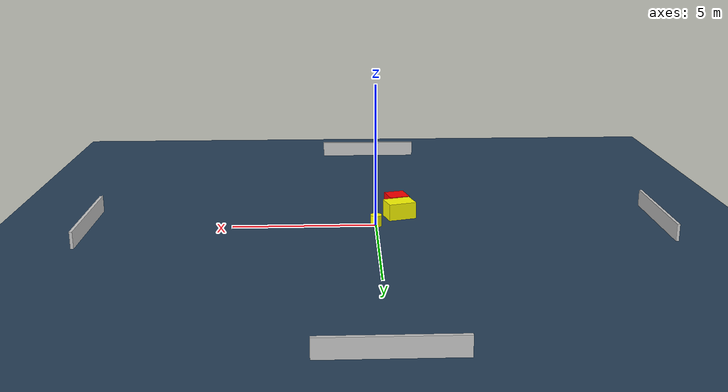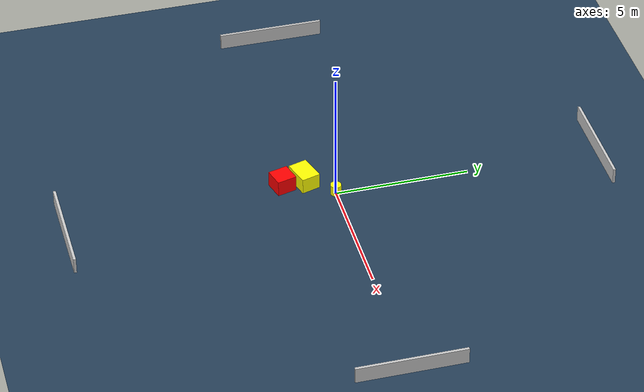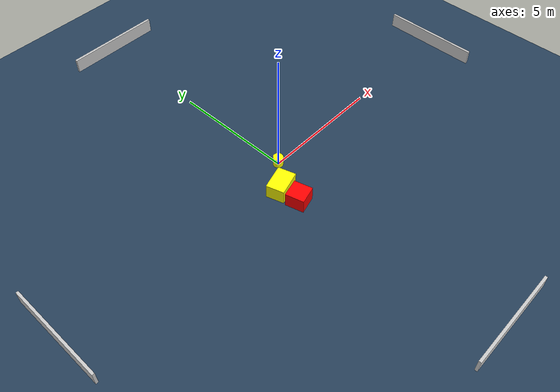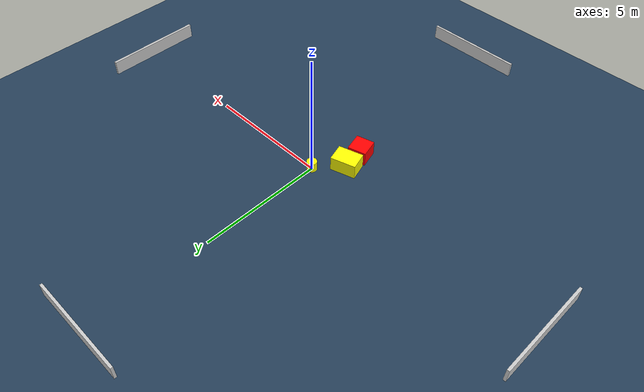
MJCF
<?xml version="1.0" ?>
<mujoco model="generated_environment">
  <option timestep="0.01" integrator="RK4" cone="elliptic"/>
  <default>
    <geom density="1"/>
  </default>
  <asset>
    <texture builtin="gradient" height="3072" name="skybox" rgb1="0.3 0.5 0.7" rgb2="0 0 0" type="skybox" width="512"/>
    <texture builtin="checker" height="300" name="groundplane" rgb1="0.2 0.3 0.4" rgb2="0.1 0.2 0.3" type="2d" width="300"/>
    <material name="groundplane" reflectance="0.2" texrepeat="5 5" texture="groundplane"/>
  </asset>
  <worldbody>
    <light dir="0 0 -1" directional="true" pos="0 0 1.5"/>
    <geom condim="3" friction="0.5 0.005 0.001" material="groundplane" name="floor" pos="0 0 0" size="0 0 0.05" type="plane"/>
    <body name="walls">
      <geom name="wall_1" condim="4" pos="-10.0 0.0 0.3" rgba="0.800000011920929 0.800000011920929 0.800000011920929 1.0" size="0.05 2.0 0.3" type="box"/>
      <geom name="wall_2" condim="4" pos="10.0 0.0 0.3" rgba="0.800000011920929 0.800000011920929 0.800000011920929 1.0" size="0.05 2.0 0.3" type="box"/>
      <geom name="wall_3" condim="4" pos="0.0 -10.0 0.3" rgba="0.800000011920929 0.800000011920929 0.800000011920929 1.0" size="2.0 0.05 0.3" type="box"/>
      <geom name="wall_4" condim="4" pos="0.0 10.0 0.3" rgba="0.800000011920929 0.800000011920929 0.800000011920929 1.0" size="2.0 0.05 0.3" type="box"/>
    </body>
    <body name="robot">
      <joint name="joint_x" type="slide" pos="0 0 0" axis="1 0 0"/>
      <joint name="joint_y" type="slide" pos="0 0 0" axis="0 1 0"/>
      <geom name="robot" type="cylinder" pos="0.0 0.0 0.2" size="0.2 0.2 0.0" mass="5.0" friction="1.0 0.005 0.0001" condim="4" rgba="1.0 1.0 0.0 1.0"/>
    </body>
    <body name="obstacle_1_movable">
      <geom name="obstacle_1_movable" condim="4" pos="-0.8794040643319181 -0.9648474819068995 0.3" euler="0 0 106.66542324037549" friction="0.0 0.005 0.001" rgba="1.0 1.0 0.0 1.0" size="0.35903734328811565 0.5026814739752659 0.3" type="box" mass="0.1"/>
      <joint type="free"/>
    </body>
    <body name="obstacle_2_static">
      <geom name="obstacle_2_static" condim="4" pos="-0.8300867087905826 -1.7969569625964787 0.3" euler="0 0 285.0384188654432" friction="0.0 0.005 0.001" rgba="1.0 0.0 0.0 1.0" size="0.37171310235722343 0.36503979672890907 0.3" type="box"/>
    </body>
  </worldbody>
  <actuator>
    <motor name="actuator_x" joint="joint_x" gear="1" ctrlrange="-1 1"/>
    <motor name="actuator_y" joint="joint_y" gear="1" ctrlrange="-1 1"/>
  </actuator>
</mujoco>
